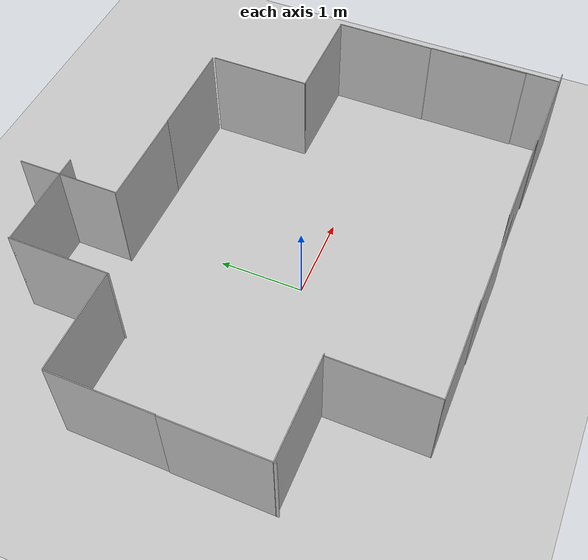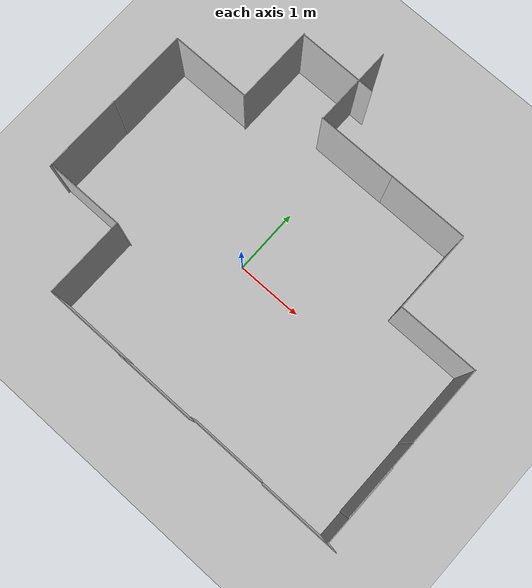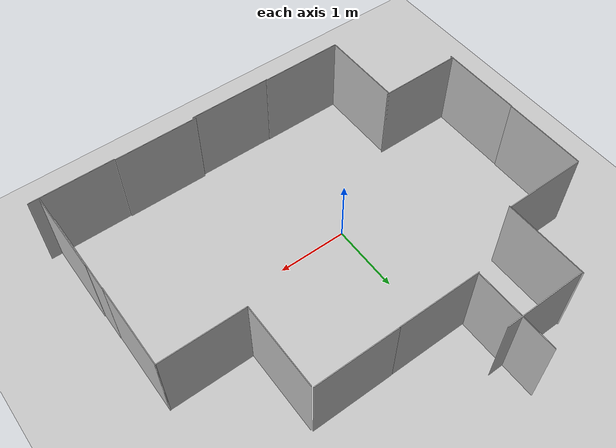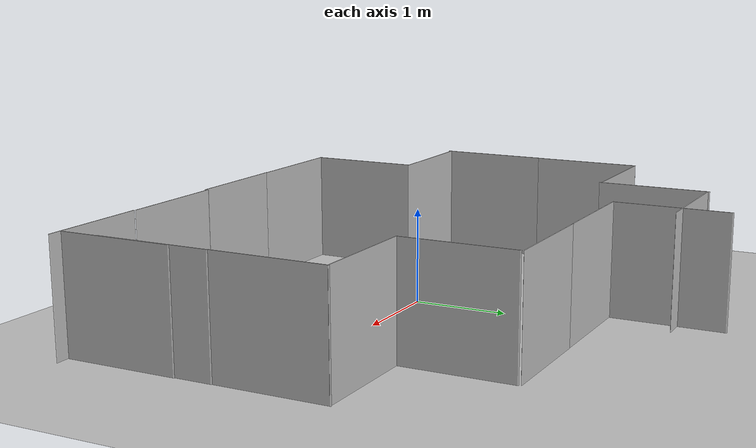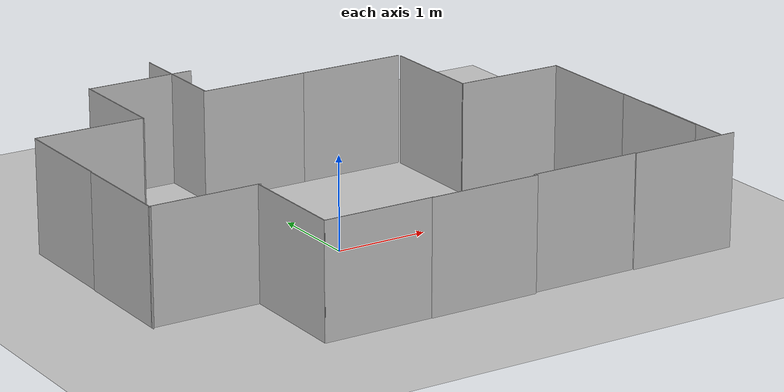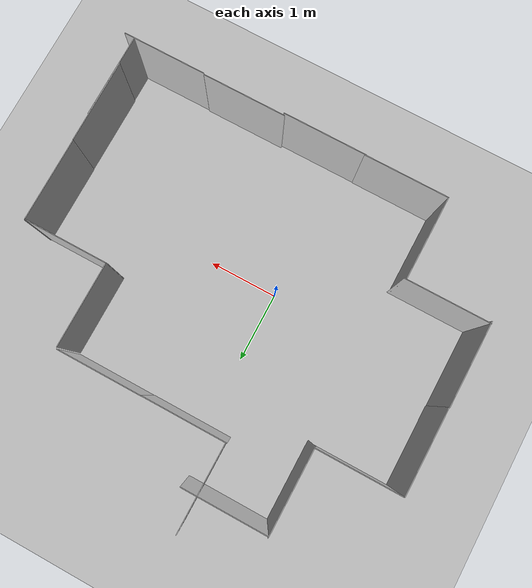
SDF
<sdf version="1.6">
 <world name="default">
  <light name="sun" type="directional">
   <pose>0 0 10 0 -0 0</pose>
   <diffuse>0.8 0.8 0.8 1</diffuse>
   <specular>0.1 0.1 0.1 1</specular>
   <attenuation>
    <range>1000</range>
    <constant>0.9</constant>
    <linear>0.01</linear>
    <quadratic>0.001</quadratic>
   </attenuation>
   <direction>-0.5 0.5 -1</direction>
  </light>
  <plugin filename="gz-sim-physics-system" name="gz::sim::systems::Physics"/>
  <plugin filename="gz-sim-user-commands-system" name="gz::sim::systems::UserCommands"/>
  <plugin filename="gz-sim-scene-broadcaster-system" name="gz::sim::systems::SceneBroadcaster"/>
  <plugin filename="gz-sim-sensors-system" name="gz::sim::systems::Sensors">
   <render_engine>ogre2</render_engine>
  </plugin>
  <plugin filename="gz-sim-imu-system" name="gz::sim::systems::Imu"/>
  <plugin name="gazebo_ros_state" filename="libgazebo_ros_state.so">
   <ros><namespace>/gazebo</namespace></ros>
   <update_rate>20.0</update_rate>
  </plugin>
  <model name="ground_plane">
   <static>1</static>
   <link name="link">
    <collision name="collision">
     <geometry><plane><normal>0 0 1</normal><size>100 100</size></plane></geometry>
     <surface><friction><ode><mu>100</mu><mu2>50</mu2></ode></friction></surface>
    </collision>
    <visual name="visual">
     <cast_shadows>0</cast_shadows>
     <geometry><plane><normal>0 0 1</normal><size>100 100</size></plane></geometry>
     <material>
      <script><uri>file://media/materials/scripts/gazebo.material</uri><name>Gazebo/Grey</name></script>
     </material>
    </visual>
   </link>
  </model>
  <gravity>0 0 -9.8</gravity>
  <magnetic_field>6e-06 2.3e-05 -4.2e-05</magnetic_field>
  <atmosphere type="adiabatic"/>
  <physics name="default_physics" default="0" type="ode">
   <max_step_size>0.001</max_step_size>
   <real_time_factor>1</real_time_factor>
   <real_time_update_rate>1000</real_time_update_rate>
  </physics>
  <scene><ambient>0.4 0.4 0.4 1</ambient><background>0.7 0.7 0.7 1</background><shadows>1</shadows></scene>
  <spherical_coordinates>
   <surface_model>EARTH_WGS84</surface_model>
   <latitude_deg>0</latitude_deg>
   <longitude_deg>0</longitude_deg>
   <elevation>0</elevation>
   <heading_deg>0</heading_deg>
  </spherical_coordinates>
  <model name="nist_maze_wall_120">
   <static>1</static>
   <link name="nist_maze_wall_120_link">
    <collision name="collision">
     <geometry>
      <mesh><uri>model://nist_maze_wall_120/meshes/nist_maze_wall_120.dae</uri><scale>1 1 1</scale></mesh>
     </geometry>
    </collision>
    <visual name="visual">
     <geometry>
      <mesh><uri>model://nist_maze_wall_120/meshes/nist_maze_wall_120.dae</uri><scale>1 1 1</scale></mesh>
     </geometry>
    </visual>
   </link>
   <pose>0.372599 -2.6043 0 0 -0 0</pose>
  </model>
  <model name="nist_maze_wall_120_0">
   <static>1</static>
   <link name="nist_maze_wall_120_link">
    <collision name="collision">
     <geometry>
      <mesh><uri>model://nist_maze_wall_120/meshes/nist_maze_wall_120.dae</uri><scale>1 1 1</scale></mesh>
     </geometry>
    </collision>
    <visual name="visual">
     <geometry>
      <mesh><uri>model://nist_maze_wall_120/meshes/nist_maze_wall_120.dae</uri><scale>1 1 1</scale></mesh>
     </geometry>
    </visual>
   </link>
   <pose>1.54181 -2.5764 0 0 -0 0</pose>
  </model>
  <model name="nist_maze_wall_120_0_clone">
   <static>1</static>
   <link name="nist_maze_wall_120_link">
    <collision name="collision">
     <geometry>
      <mesh><uri>model://nist_maze_wall_120/meshes/nist_maze_wall_120.dae</uri><scale>1 1 1</scale></mesh>
     </geometry>
    </collision>
    <visual name="visual">
     <geometry>
      <mesh><uri>model://nist_maze_wall_120/meshes/nist_maze_wall_120.dae</uri><scale>1 1 1</scale></mesh>
     </geometry>
    </visual>
   </link>
   <pose>-0.799127 -2.59768 0 0 -0 0</pose>
  </model>
  <model name="nist_maze_wall_120_0_clone_0">
   <static>1</static>
   <link name="nist_maze_wall_120_link">
    <collision name="collision">
     <geometry>
      <mesh><uri>model://nist_maze_wall_120/meshes/nist_maze_wall_120.dae</uri><scale>1 1 1</scale></mesh>
     </geometry>
    </collision>
    <visual name="visual">
     <geometry>
      <mesh><uri>model://nist_maze_wall_120/meshes/nist_maze_wall_120.dae</uri><scale>1 1 1</scale></mesh>
     </geometry>
    </visual>
   </link>
   <pose>1.39334 1.39742 0 0 -0 0</pose>
  </model>
  <model name="nist_maze_wall_120_0_clone_1">
   <static>1</static>
   <link name="nist_maze_wall_120_link">
    <collision name="collision">
     <geometry>
      <mesh><uri>model://nist_maze_wall_120/meshes/nist_maze_wall_120.dae</uri><scale>1 1 1</scale></mesh>
     </geometry>
    </collision>
    <visual name="visual">
     <geometry>
      <mesh><uri>model://nist_maze_wall_120/meshes/nist_maze_wall_120.dae</uri><scale>1 1 1</scale></mesh>
     </geometry>
    </visual>
   </link>
   <pose>0.213104 1.3948 0 0 -0 0</pose>
  </model>
  <model name="nist_maze_wall_120_0_clone_2">
   <static>1</static>
   <link name="nist_maze_wall_120_link">
    <collision name="collision">
     <geometry>
      <mesh><uri>model://nist_maze_wall_120/meshes/nist_maze_wall_120.dae</uri><scale>1 1 1</scale></mesh>
     </geometry>
    </collision>
    <visual name="visual">
     <geometry>
      <mesh><uri>model://nist_maze_wall_120/meshes/nist_maze_wall_120.dae</uri><scale>1 1 1</scale></mesh>
     </geometry>
    </visual>
   </link>
   <pose>1.39789 1.38193 0 0 0 -1.57423</pose>
  </model>
  <model name="nist_maze_wall_120_0_clone_0_clone">
   <static>1</static>
   <link name="nist_maze_wall_120_link">
    <collision name="collision">
     <geometry>
      <mesh><uri>model://nist_maze_wall_120/meshes/nist_maze_wall_120.dae</uri><scale>1 1 1</scale></mesh>
     </geometry>
    </collision>
    <visual name="visual">
     <geometry>
      <mesh><uri>model://nist_maze_wall_120/meshes/nist_maze_wall_120.dae</uri><scale>1 1 1</scale></mesh>
     </geometry>
    </visual>
   </link>
   <pose>2.58873 0.18746 0 0 -0 0</pose>
  </model>
  <model name="nist_maze_wall_120_0_clone_2_clone">
   <static>1</static>
   <link name="nist_maze_wall_120_link">
    <collision name="collision">
     <geometry>
      <mesh><uri>model://nist_maze_wall_120/meshes/nist_maze_wall_120.dae</uri><scale>1 1 1</scale></mesh>
     </geometry>
    </collision>
    <visual name="visual">
     <geometry>
      <mesh><uri>model://nist_maze_wall_120/meshes/nist_maze_wall_120.dae</uri><scale>1 1 1</scale></mesh>
     </geometry>
    </visual>
   </link>
   <pose>2.57905 0.204183 0 0 0 -1.57423</pose>
  </model>
  <model name="nist_maze_wall_120_0_clone_2_clone_clone">
   <static>1</static>
   <link name="nist_maze_wall_120_link">
    <collision name="collision">
     <geometry>
      <mesh><uri>model://nist_maze_wall_120/meshes/nist_maze_wall_120.dae</uri><scale>1 1 1</scale></mesh>
     </geometry>
    </collision>
    <visual name="visual">
     <geometry>
      <mesh><uri>model://nist_maze_wall_120/meshes/nist_maze_wall_120.dae</uri><scale>1 1 1</scale></mesh>
     </geometry>
    </visual>
   </link>
   <pose>2.58015 -0.987545 0 0 0 -1.57423</pose>
  </model>
  <model name="nist_maze_wall_120_0_clone_3">
   <static>1</static>
   <link name="nist_maze_wall_120_link">
    <collision name="collision">
     <geometry>
      <mesh><uri>model://nist_maze_wall_120/meshes/nist_maze_wall_120.dae</uri><scale>1 1 1</scale></mesh>
     </geometry>
    </collision>
    <visual name="visual">
     <geometry>
      <mesh><uri>model://nist_maze_wall_120/meshes/nist_maze_wall_120.dae</uri><scale>1 1 1</scale></mesh>
     </geometry>
    </visual>
   </link>
   <pose>2.74042 -2.58943 0 0 -0 0</pose>
  </model>
  <model name="nist_maze_wall_120_0_clone_2_clone_clone_clone">
   <static>1</static>
   <link name="nist_maze_wall_120_link">
    <collision name="collision">
     <geometry>
      <mesh><uri>model://nist_maze_wall_120/meshes/nist_maze_wall_120.dae</uri><scale>1 1 1</scale></mesh>
     </geometry>
    </collision>
    <visual name="visual">
     <geometry>
      <mesh><uri>model://nist_maze_wall_120/meshes/nist_maze_wall_120.dae</uri><scale>1 1 1</scale></mesh>
     </geometry>
    </visual>
   </link>
   <pose>2.58906 -1.38155 0 0 0 -1.57423</pose>
  </model>
  <model name="nist_maze_wall_120_0_clone_2_clone_clone_clone_0">
   <static>1</static>
   <link name="nist_maze_wall_120_link">
    <collision name="collision">
     <geometry>
      <mesh><uri>model://nist_maze_wall_120/meshes/nist_maze_wall_120.dae</uri><scale>1 1 1</scale></mesh>
     </geometry>
    </collision>
    <visual name="visual">
     <geometry>
      <mesh><uri>model://nist_maze_wall_120/meshes/nist_maze_wall_120.dae</uri><scale>1 1 1</scale></mesh>
     </geometry>
    </visual>
   </link>
   <pose>-1.98993 -1.3997 0 0 0 -1.57423</pose>
  </model>
  <model name="nist_maze_wall_120_0_clone_1_clone">
   <static>1</static>
   <link name="nist_maze_wall_120_link">
    <collision name="collision">
     <geometry>
      <mesh><uri>model://nist_maze_wall_120/meshes/nist_maze_wall_120.dae</uri><scale>1 1 1</scale></mesh>
     </geometry>
    </collision>
    <visual name="visual">
     <geometry>
      <mesh><uri>model://nist_maze_wall_120/meshes/nist_maze_wall_120.dae</uri><scale>1 1 1</scale></mesh>
     </geometry>
    </visual>
   </link>
   <pose>-1.95875 -1.40697 0 0 -0 0</pose>
  </model>
  <model name="nist_maze_wall_120_0_clone_2_clone_clone_clone_0_clone">
   <static>1</static>
   <link name="nist_maze_wall_120_link">
    <collision name="collision">
     <geometry>
      <mesh><uri>model://nist_maze_wall_120/meshes/nist_maze_wall_120.dae</uri><scale>1 1 1</scale></mesh>
     </geometry>
    </collision>
    <visual name="visual">
     <geometry>
      <mesh><uri>model://nist_maze_wall_120/meshes/nist_maze_wall_120.dae</uri><scale>1 1 1</scale></mesh>
     </geometry>
    </visual>
   </link>
   <pose>-3.14585 -0.240731 0 0 0 -1.57423</pose>
  </model>
  <model name="nist_maze_wall_120_0_clone_2_clone_clone_clone_0_clone_0">
   <static>1</static>
   <link name="nist_maze_wall_120_link">
    <collision name="collision">
     <geometry>
      <mesh><uri>model://nist_maze_wall_120/meshes/nist_maze_wall_120.dae</uri><scale>1 1 1</scale></mesh>
     </geometry>
    </collision>
    <visual name="visual">
     <geometry>
      <mesh><uri>model://nist_maze_wall_120/meshes/nist_maze_wall_120.dae</uri><scale>1 1 1</scale></mesh>
     </geometry>
    </visual>
   </link>
   <pose>-3.13529 0.949838 0 0 0 -1.57423</pose>
  </model>
  <model name="nist_maze_wall_120_0_clone_1_clone_clone">
   <static>1</static>
   <link name="nist_maze_wall_120_link">
    <collision name="collision">
     <geometry>
      <mesh><uri>model://nist_maze_wall_120/meshes/nist_maze_wall_120.dae</uri><scale>1 1 1</scale></mesh>
     </geometry>
    </collision>
    <visual name="visual">
     <geometry>
      <mesh><uri>model://nist_maze_wall_120/meshes/nist_maze_wall_120.dae</uri><scale>1 1 1</scale></mesh>
     </geometry>
    </visual>
   </link>
   <pose>-1.93212 0.945244 0 0 -0 0</pose>
  </model>
  <model name="nist_maze_wall_120_0_clone_2_clone_0">
   <static>1</static>
   <link name="nist_maze_wall_120_link">
    <collision name="collision">
     <geometry>
      <mesh><uri>model://nist_maze_wall_120/meshes/nist_maze_wall_120.dae</uri><scale>1 1 1</scale></mesh>
     </geometry>
    </collision>
    <visual name="visual">
     <geometry>
      <mesh><uri>model://nist_maze_wall_120/meshes/nist_maze_wall_120.dae</uri><scale>1 1 1</scale></mesh>
     </geometry>
    </visual>
   </link>
   <pose>-1.9307 2.12423 0 0 0 -1.57423</pose>
  </model>
  <model name="nist_maze_wall_120_0_clone_1_clone_clone_0">
   <static>1</static>
   <link name="nist_maze_wall_120_link">
    <collision name="collision">
     <geometry>
      <mesh><uri>model://nist_maze_wall_120/meshes/nist_maze_wall_120.dae</uri><scale>1 1 1</scale></mesh>
     </geometry>
    </collision>
    <visual name="visual">
     <geometry>
      <mesh><uri>model://nist_maze_wall_120/meshes/nist_maze_wall_120.dae</uri><scale>1 1 1</scale></mesh>
     </geometry>
    </visual>
   </link>
   <pose>-0.733881 2.10123 0 0 -0 0</pose>
  </model>
  <model name="nist_maze_wall_120_0_clone_2_clone_0_clone">
   <static>1</static>
   <link name="nist_maze_wall_120_link">
    <collision name="collision">
     <geometry>
      <mesh><uri>model://nist_maze_wall_120/meshes/nist_maze_wall_120.dae</uri><scale>1 1 1</scale></mesh>
     </geometry>
    </collision>
    <visual name="visual">
     <geometry>
      <mesh><uri>model://nist_maze_wall_120/meshes/nist_maze_wall_120.dae</uri><scale>1 1 1</scale></mesh>
     </geometry>
    </visual>
   </link>
   <pose>-0.965426 2.60337 0 0 0 -1.57423</pose>
  </model>
 </world>
</sdf>
